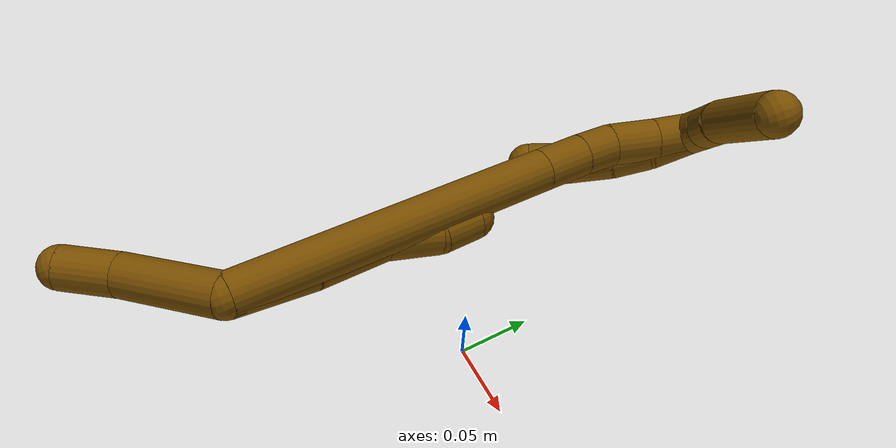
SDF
<sdf version="1.7">
 <world name="default">
  <model name="12">
   <static>0</static>
   <link name="12">
    <collision name="collision-cylinder-e_1_2_8">
     <pose>-0.003795 0.013917 0.019859 -0.611244 -0.155234 0.049066</pose>
     <geometry><cylinder><radius>0.0125</radius><length>0.049091</length></cylinder></geometry>
     <surface>
      <friction><ode><mu>1.16</mu><mu2>1.16</mu2><slip1>0</slip1><slip2>0</slip2></ode></friction>
      <contact><ode><kp>1e+06</kp><kd>1</kd><max_vel>0</max_vel><min_depth>0.001</min_depth></ode></contact>
     </surface>
    </collision>
    <visual name="visual-cylinder-e_1_2_8">
     <pose>-0.003795 0.013917 0.019859 -0.611244 -0.155234 0.049066</pose>
     <geometry><cylinder><radius>0.0125</radius><length>0.049091</length></cylinder></geometry>
     <material><ambient>0.466667 0.301961 0 1</ambient></material>
    </visual>
    <collision name="collision-cylinder-e_2_8_9">
     <pose>-0.012495 0.039393 0.05882 -0.54418 -0.216268 0.060559</pose>
     <geometry><cylinder><radius>0.0125</radius><length>0.045718</length></cylinder></geometry>
     <surface>
      <friction><ode><mu>1.16</mu><mu2>1.16</mu2><slip1>0</slip1><slip2>0</slip2></ode></friction>
      <contact><ode><kp>1e+06</kp><kd>1</kd><max_vel>0</max_vel><min_depth>0.001</min_depth></ode></contact>
     </surface>
    </collision>
    <visual name="visual-cylinder-e_2_8_9">
     <pose>-0.012495 0.039393 0.05882 -0.54418 -0.216268 0.060559</pose>
     <geometry><cylinder><radius>0.0125</radius><length>0.045718</length></cylinder></geometry>
     <material><ambient>0.466667 0.301961 0 1</ambient></material>
    </visual>
    <collision name="collision-cylinder-e_3_9_10">
     <pose>-0.015745 0.05738 0.092564 -0.413681 0.103177 -0.021669</pose>
     <geometry><cylinder><radius>0.0125</radius><length>0.032153</length></cylinder></geometry>
     <surface>
      <friction><ode><mu>1.16</mu><mu2>1.16</mu2><slip1>0</slip1><slip2>0</slip2></ode></friction>
      <contact><ode><kp>1e+06</kp><kd>1</kd><max_vel>0</max_vel><min_depth>0.001</min_depth></ode></contact>
     </surface>
    </collision>
    <visual name="visual-cylinder-e_3_9_10">
     <pose>-0.015745 0.05738 0.092564 -0.413681 0.103177 -0.021669</pose>
     <geometry><cylinder><radius>0.0125</radius><length>0.032153</length></cylinder></geometry>
     <material><ambient>0.466667 0.301961 0 1</ambient></material>
    </visual>
    <collision name="collision-cylinder-e_4_10_6">
     <pose>-0.016401 0.068879 0.117287 -0.466077 -0.202097 0.048123</pose>
     <geometry><cylinder><radius>0.0125</radius><length>0.023038</length></cylinder></geometry>
     <surface>
      <friction><ode><mu>1.16</mu><mu2>1.16</mu2><slip1>0</slip1><slip2>0</slip2></ode></friction>
      <contact><ode><kp>1e+06</kp><kd>1</kd><max_vel>0</max_vel><min_depth>0.001</min_depth></ode></contact>
     </surface>
    </collision>
    <visual name="visual-cylinder-e_4_10_6">
     <pose>-0.016401 0.068879 0.117287 -0.466077 -0.202097 0.048123</pose>
     <geometry><cylinder><radius>0.0125</radius><length>0.023038</length></cylinder></geometry>
     <material><ambient>0.466667 0.301961 0 1</ambient></material>
    </visual>
    <collision name="collision-cylinder-e_1_2_11">
     <pose>-0.017857 0.005711 -0.02731 -2.93543 -0.569329 2.46197</pose>
     <geometry><cylinder><radius>0.0125</radius><length>0.066253</length></cylinder></geometry>
     <surface>
      <friction><ode><mu>1.16</mu><mu2>1.16</mu2><slip1>0</slip1><slip2>0</slip2></ode></friction>
      <contact><ode><kp>1e+06</kp><kd>1</kd><max_vel>0</max_vel><min_depth>0.001</min_depth></ode></contact>
     </surface>
    </collision>
    <visual name="visual-cylinder-e_1_2_11">
     <pose>-0.017857 0.005711 -0.02731 -2.93543 -0.569329 2.46197</pose>
     <geometry><cylinder><radius>0.0125</radius><length>0.066253</length></cylinder></geometry>
     <material><ambient>0.466667 0.301961 0 1</ambient></material>
    </visual>
    <collision name="collision-cylinder-e_2_11_5">
     <pose>-0.043233 0.0097 -0.069628 3.02727 -0.461824 -2.66409</pose>
     <geometry><cylinder><radius>0.0125</radius><length>0.033747</length></cylinder></geometry>
     <surface>
      <friction><ode><mu>1.16</mu><mu2>1.16</mu2><slip1>0</slip1><slip2>0</slip2></ode></friction>
      <contact><ode><kp>1e+06</kp><kd>1</kd><max_vel>0</max_vel><min_depth>0.001</min_depth></ode></contact>
     </surface>
    </collision>
    <visual name="visual-cylinder-e_2_11_5">
     <pose>-0.043233 0.0097 -0.069628 3.02727 -0.461824 -2.66409</pose>
     <geometry><cylinder><radius>0.0125</radius><length>0.033747</length></cylinder></geometry>
     <material><ambient>0.466667 0.301961 0 1</ambient></material>
    </visual>
    <collision name="collision-cylinder-e_1_2_12">
     <pose>-0.018124 0.044127 0.087137 -0.468766 -0.183476 0.043925</pose>
     <geometry><cylinder><radius>0.0125</radius><length>0.198681</length></cylinder></geometry>
     <surface>
      <friction><ode><mu>1.16</mu><mu2>1.16</mu2><slip1>0</slip1><slip2>0</slip2></ode></friction>
      <contact><ode><kp>1e+06</kp><kd>1</kd><max_vel>0</max_vel><min_depth>0.001</min_depth></ode></contact>
     </surface>
    </collision>
    <visual name="visual-cylinder-e_1_2_12">
     <pose>-0.018124 0.044127 0.087137 -0.468766 -0.183476 0.043925</pose>
     <geometry><cylinder><radius>0.0125</radius><length>0.198681</length></cylinder></geometry>
     <material><ambient>0.466667 0.301961 0 1</ambient></material>
    </visual>
    <collision name="collision-cylinder-e_2_12_13">
     <pose>-0.03874 0.094396 0.186951 -0.45108 -0.175056 0.040263</pose>
     <geometry><cylinder><radius>0.0125</radius><length>0.028611</length></cylinder></geometry>
     <surface>
      <friction><ode><mu>1.16</mu><mu2>1.16</mu2><slip1>0</slip1><slip2>0</slip2></ode></friction>
      <contact><ode><kp>1e+06</kp><kd>1</kd><max_vel>0</max_vel><min_depth>0.001</min_depth></ode></contact>
     </surface>
    </collision>
    <visual name="visual-cylinder-e_2_12_13">
     <pose>-0.03874 0.094396 0.186951 -0.45108 -0.175056 0.040263</pose>
     <geometry><cylinder><radius>0.0125</radius><length>0.028611</length></cylinder></geometry>
     <material><ambient>0.466667 0.301961 0 1</ambient></material>
    </visual>
    <collision name="collision-cylinder-e_3_13_14">
     <pose>-0.042652 0.10508 0.209413 -0.434777 -0.130896 0.028952</pose>
     <geometry><cylinder><radius>0.0125</radius><length>0.021761</length></cylinder></geometry>
     <surface>
      <friction><ode><mu>1.16</mu><mu2>1.16</mu2><slip1>0</slip1><slip2>0</slip2></ode></friction>
      <contact><ode><kp>1e+06</kp><kd>1</kd><max_vel>0</max_vel><min_depth>0.001</min_depth></ode></contact>
     </surface>
    </collision>
    <visual name="visual-cylinder-e_3_13_14">
     <pose>-0.042652 0.10508 0.209413 -0.434777 -0.130896 0.028952</pose>
     <geometry><cylinder><radius>0.0125</radius><length>0.021761</length></cylinder></geometry>
     <material><ambient>0.466667 0.301961 0 1</ambient></material>
    </visual>
    <collision name="collision-cylinder-e_4_14_15">
     <pose>-0.042217 0.113666 0.232646 -0.291941 0.131358 -0.019339</pose>
     <geometry><cylinder><radius>0.0125</radius><length>0.028331</length></cylinder></geometry>
     <surface>
      <friction><ode><mu>1.16</mu><mu2>1.16</mu2><slip1>0</slip1><slip2>0</slip2></ode></friction>
      <contact><ode><kp>1e+06</kp><kd>1</kd><max_vel>0</max_vel><min_depth>0.001</min_depth></ode></contact>
     </surface>
    </collision>
    <visual name="visual-cylinder-e_4_14_15">
     <pose>-0.042217 0.113666 0.232646 -0.291941 0.131358 -0.019339</pose>
     <geometry><cylinder><radius>0.0125</radius><length>0.028331</length></cylinder></geometry>
     <material><ambient>0.466667 0.301961 0 1</ambient></material>
    </visual>
    <collision name="collision-cylinder-e_5_15_1">
     <pose>-0.038992 0.120272 0.257024 -0.230437 0.121403 -0.014067</pose>
     <geometry><cylinder><radius>0.0125</radius><length>0.022615</length></cylinder></geometry>
     <surface>
      <friction><ode><mu>1.16</mu><mu2>1.16</mu2><slip1>0</slip1><slip2>0</slip2></ode></friction>
      <contact><ode><kp>1e+06</kp><kd>1</kd><max_vel>0</max_vel><min_depth>0.001</min_depth></ode></contact>
     </surface>
    </collision>
    <visual name="visual-cylinder-e_5_15_1">
     <pose>-0.038992 0.120272 0.257024 -0.230437 0.121403 -0.014067</pose>
     <geometry><cylinder><radius>0.0125</radius><length>0.022615</length></cylinder></geometry>
     <material><ambient>0.466667 0.301961 0 1</ambient></material>
    </visual>
    <collision name="collision-cylinder-e_1_1_16">
     <pose>-0.03435 0.113883 0.271075 1.23506 0.33233 0.237097</pose>
     <geometry><cylinder><radius>0.0125</radius><length>0.020061</length></cylinder></geometry>
     <surface>
      <friction><ode><mu>1.16</mu><mu2>1.16</mu2><slip1>0</slip1><slip2>0</slip2></ode></friction>
      <contact><ode><kp>1e+06</kp><kd>1</kd><max_vel>0</max_vel><min_depth>0.001</min_depth></ode></contact>
     </surface>
    </collision>
    <visual name="visual-cylinder-e_1_1_16">
     <pose>-0.03435 0.113883 0.271075 1.23506 0.33233 0.237097</pose>
     <geometry><cylinder><radius>0.0125</radius><length>0.020061</length></cylinder></geometry>
     <material><ambient>0.466667 0.301961 0 1</ambient></material>
    </visual>
    <collision name="collision-cylinder-e_2_16_17">
     <pose>-0.027337 0.094336 0.275743 1.42608 0.33615 0.291401</pose>
     <geometry><cylinder><radius>0.0125</radius><length>0.022684</length></cylinder></geometry>
     <surface>
      <friction><ode><mu>1.16</mu><mu2>1.16</mu2><slip1>0</slip1><slip2>0</slip2></ode></friction>
      <contact><ode><kp>1e+06</kp><kd>1</kd><max_vel>0</max_vel><min_depth>0.001</min_depth></ode></contact>
     </surface>
    </collision>
    <visual name="visual-cylinder-e_2_16_17">
     <pose>-0.027337 0.094336 0.275743 1.42608 0.33615 0.291401</pose>
     <geometry><cylinder><radius>0.0125</radius><length>0.022684</length></cylinder></geometry>
     <material><ambient>0.466667 0.301961 0 1</ambient></material>
    </visual>
    <collision name="collision-cylinder-e_3_17_4">
     <pose>-0.011282 0.058733 0.283809 1.31569 0.444639 0.34584</pose>
     <geometry><cylinder><radius>0.0125</radius><length>0.057256</length></cylinder></geometry>
     <surface>
      <friction><ode><mu>1.16</mu><mu2>1.16</mu2><slip1>0</slip1><slip2>0</slip2></ode></friction>
      <contact><ode><kp>1e+06</kp><kd>1</kd><max_vel>0</max_vel><min_depth>0.001</min_depth></ode></contact>
     </surface>
    </collision>
    <visual name="visual-cylinder-e_3_17_4">
     <pose>-0.011282 0.058733 0.283809 1.31569 0.444639 0.34584</pose>
     <geometry><cylinder><radius>0.0125</radius><length>0.057256</length></cylinder></geometry>
     <material><ambient>0.466667 0.301961 0 1</ambient></material>
    </visual>
    <collision name="collision-cylinder-e_1_1_18">
     <pose>-0.037829 0.123622 0.254988 -3.081 -0.015887 0.512729</pose>
     <geometry><cylinder><radius>0.0125</radius><length>0.025978</length></cylinder></geometry>
     <surface>
      <friction><ode><mu>1.16</mu><mu2>1.16</mu2><slip1>0</slip1><slip2>0</slip2></ode></friction>
      <contact><ode><kp>1e+06</kp><kd>1</kd><max_vel>0</max_vel><min_depth>0.001</min_depth></ode></contact>
     </surface>
    </collision>
    <visual name="visual-cylinder-e_1_1_18">
     <pose>-0.037829 0.123622 0.254988 -3.081 -0.015887 0.512729</pose>
     <geometry><cylinder><radius>0.0125</radius><length>0.025978</length></cylinder></geometry>
     <material><ambient>0.466667 0.301961 0 1</ambient></material>
    </visual>
    <collision name="collision-cylinder-e_2_18_19">
     <pose>-0.040028 0.125784 0.230744 -3.02025 -0.173632 1.92292</pose>
     <geometry><cylinder><radius>0.0125</radius><length>0.023075</length></cylinder></geometry>
     <surface>
      <friction><ode><mu>1.16</mu><mu2>1.16</mu2><slip1>0</slip1><slip2>0</slip2></ode></friction>
      <contact><ode><kp>1e+06</kp><kd>1</kd><max_vel>0</max_vel><min_depth>0.001</min_depth></ode></contact>
     </surface>
    </collision>
    <visual name="visual-cylinder-e_2_18_19">
     <pose>-0.040028 0.125784 0.230744 -3.02025 -0.173632 1.92292</pose>
     <geometry><cylinder><radius>0.0125</radius><length>0.023075</length></cylinder></geometry>
     <material><ambient>0.466667 0.301961 0 1</ambient></material>
    </visual>
    <collision name="collision-cylinder-e_3_19_20">
     <pose>-0.045596 0.127061 0.206259 3.13415 -0.264319 -3.08563</pose>
     <geometry><cylinder><radius>0.0125</radius><length>0.027362</length></cylinder></geometry>
     <surface>
      <friction><ode><mu>1.16</mu><mu2>1.16</mu2><slip1>0</slip1><slip2>0</slip2></ode></friction>
      <contact><ode><kp>1e+06</kp><kd>1</kd><max_vel>0</max_vel><min_depth>0.001</min_depth></ode></contact>
     </surface>
    </collision>
    <visual name="visual-cylinder-e_3_19_20">
     <pose>-0.045596 0.127061 0.206259 3.13415 -0.264319 -3.08563</pose>
     <geometry><cylinder><radius>0.0125</radius><length>0.027362</length></cylinder></geometry>
     <material><ambient>0.466667 0.301961 0 1</ambient></material>
    </visual>
    <collision name="collision-cylinder-e_4_20_3">
     <pose>-0.053097 0.125605 0.182017 3.01919 -0.339469 -2.45482</pose>
     <geometry><cylinder><radius>0.0125</radius><length>0.023586</length></cylinder></geometry>
     <surface>
      <friction><ode><mu>1.16</mu><mu2>1.16</mu2><slip1>0</slip1><slip2>0</slip2></ode></friction>
      <contact><ode><kp>1e+06</kp><kd>1</kd><max_vel>0</max_vel><min_depth>0.001</min_depth></ode></contact>
     </surface>
    </collision>
    <visual name="visual-cylinder-e_4_20_3">
     <pose>-0.053097 0.125605 0.182017 3.01919 -0.339469 -2.45482</pose>
     <geometry><cylinder><radius>0.0125</radius><length>0.023586</length></cylinder></geometry>
     <material><ambient>0.466667 0.301961 0 1</ambient></material>
    </visual>
    <collision name="collision-sphere-3">
     <pose>-0.057024 0.124247 0.17098 0 -0 0</pose>
     <geometry><sphere><radius>0.0125</radius></sphere></geometry>
     <surface>
      <friction><ode><mu>1.16</mu><mu2>1.16</mu2><slip1>0</slip1><slip2>0</slip2></ode></friction>
      <contact><ode><kp>1e+06</kp><kd>1</kd><max_vel>0</max_vel><min_depth>0.001</min_depth></ode></contact>
     </surface>
    </collision>
    <visual name="visual-sphere-3">
     <pose>-0.057024 0.124247 0.17098 0 -0 0</pose>
     <geometry><sphere><radius>0.0125</radius></sphere></geometry>
     <material><ambient>0.466667 0.301961 0 1</ambient></material>
    </visual>
    <collision name="collision-sphere-20">
     <pose>-0.04917 0.126963 0.193053 0 -0 0</pose>
     <geometry><sphere><radius>0.0125</radius></sphere></geometry>
     <surface>
      <friction><ode><mu>1.16</mu><mu2>1.16</mu2><slip1>0</slip1><slip2>0</slip2></ode></friction>
      <contact><ode><kp>1e+06</kp><kd>1</kd><max_vel>0</max_vel><min_depth>0.001</min_depth></ode></contact>
     </surface>
    </collision>
    <visual name="visual-sphere-20">
     <pose>-0.04917 0.126963 0.193053 0 -0 0</pose>
     <geometry><sphere><radius>0.0125</radius></sphere></geometry>
     <material><ambient>0.466667 0.301961 0 1</ambient></material>
    </visual>
    <collision name="collision-sphere-19">
     <pose>-0.042022 0.127159 0.219464 0 -0 0</pose>
     <geometry><sphere><radius>0.0125</radius></sphere></geometry>
     <surface>
      <friction><ode><mu>1.16</mu><mu2>1.16</mu2><slip1>0</slip1><slip2>0</slip2></ode></friction>
      <contact><ode><kp>1e+06</kp><kd>1</kd><max_vel>0</max_vel><min_depth>0.001</min_depth></ode></contact>
     </surface>
    </collision>
    <visual name="visual-sphere-19">
     <pose>-0.042022 0.127159 0.219464 0 -0 0</pose>
     <geometry><sphere><radius>0.0125</radius></sphere></geometry>
     <material><ambient>0.466667 0.301961 0 1</ambient></material>
    </visual>
    <collision name="collision-sphere-11">
     <pose>-0.035715 0.011423 -0.054621 0 -0 0</pose>
     <geometry><sphere><radius>0.0125</radius></sphere></geometry>
     <surface>
      <friction><ode><mu>1.16</mu><mu2>1.16</mu2><slip1>0</slip1><slip2>0</slip2></ode></friction>
      <contact><ode><kp>1e+06</kp><kd>1</kd><max_vel>0</max_vel><min_depth>0.001</min_depth></ode></contact>
     </surface>
    </collision>
    <visual name="visual-sphere-11">
     <pose>-0.035715 0.011423 -0.054621 0 -0 0</pose>
     <geometry><sphere><radius>0.0125</radius></sphere></geometry>
     <material><ambient>0.466667 0.301961 0 1</ambient></material>
    </visual>
    <collision name="collision-sphere-6">
     <pose>-0.018713 0.07395 0.127368 0 -0 0</pose>
     <geometry><sphere><radius>0.0125</radius></sphere></geometry>
     <surface>
      <friction><ode><mu>1.16</mu><mu2>1.16</mu2><slip1>0</slip1><slip2>0</slip2></ode></friction>
      <contact><ode><kp>1e+06</kp><kd>1</kd><max_vel>0</max_vel><min_depth>0.001</min_depth></ode></contact>
     </surface>
    </collision>
    <visual name="visual-sphere-6">
     <pose>-0.018713 0.07395 0.127368 0 -0 0</pose>
     <geometry><sphere><radius>0.0125</radius></sphere></geometry>
     <material><ambient>0.466667 0.301961 0 1</ambient></material>
    </visual>
    <collision name="collision-sphere-10">
     <pose>-0.014089 0.063808 0.107206 0 -0 0</pose>
     <geometry><sphere><radius>0.0125</radius></sphere></geometry>
     <surface>
      <friction><ode><mu>1.16</mu><mu2>1.16</mu2><slip1>0</slip1><slip2>0</slip2></ode></friction>
      <contact><ode><kp>1e+06</kp><kd>1</kd><max_vel>0</max_vel><min_depth>0.001</min_depth></ode></contact>
     </surface>
    </collision>
    <visual name="visual-sphere-10">
     <pose>-0.014089 0.063808 0.107206 0 -0 0</pose>
     <geometry><sphere><radius>0.0125</radius></sphere></geometry>
     <material><ambient>0.466667 0.301961 0 1</ambient></material>
    </visual>
    <collision name="collision-sphere-9">
     <pose>-0.0174 0.050951 0.077922 0 -0 0</pose>
     <geometry><sphere><radius>0.0125</radius></sphere></geometry>
     <surface>
      <friction><ode><mu>1.16</mu><mu2>1.16</mu2><slip1>0</slip1><slip2>0</slip2></ode></friction>
      <contact><ode><kp>1e+06</kp><kd>1</kd><max_vel>0</max_vel><min_depth>0.001</min_depth></ode></contact>
     </surface>
    </collision>
    <visual name="visual-sphere-9">
     <pose>-0.0174 0.050951 0.077922 0 -0 0</pose>
     <geometry><sphere><radius>0.0125</radius></sphere></geometry>
     <material><ambient>0.466667 0.301961 0 1</ambient></material>
    </visual>
    <collision name="collision-sphere-2">
     <geometry><sphere><radius>0.0125</radius></sphere></geometry>
     <surface>
      <friction><ode><mu>1.16</mu><mu2>1.16</mu2><slip1>0</slip1><slip2>0</slip2></ode></friction>
      <contact><ode><kp>1e+06</kp><kd>1</kd><max_vel>0</max_vel><min_depth>0.001</min_depth></ode></contact>
     </surface>
    </collision>
    <visual name="visual-sphere-2">
     <geometry><sphere><radius>0.0125</radius></sphere></geometry>
     <material><ambient>0.466667 0.301961 0 1</ambient></material>
    </visual>
    <collision name="collision-sphere-8">
     <pose>-0.00759 0.027834 0.039719 0 -0 0</pose>
     <geometry><sphere><radius>0.0125</radius></sphere></geometry>
     <surface>
      <friction><ode><mu>1.16</mu><mu2>1.16</mu2><slip1>0</slip1><slip2>0</slip2></ode></friction>
      <contact><ode><kp>1e+06</kp><kd>1</kd><max_vel>0</max_vel><min_depth>0.001</min_depth></ode></contact>
     </surface>
    </collision>
    <visual name="visual-sphere-8">
     <pose>-0.00759 0.027834 0.039719 0 -0 0</pose>
     <geometry><sphere><radius>0.0125</radius></sphere></geometry>
     <material><ambient>0.466667 0.301961 0 1</ambient></material>
    </visual>
    <collision name="collision-sphere-5">
     <pose>-0.050752 0.007976 -0.084635 0 -0 0</pose>
     <geometry><sphere><radius>0.0125</radius></sphere></geometry>
     <surface>
      <friction><ode><mu>1.16</mu><mu2>1.16</mu2><slip1>0</slip1><slip2>0</slip2></ode></friction>
      <contact><ode><kp>1e+06</kp><kd>1</kd><max_vel>0</max_vel><min_depth>0.001</min_depth></ode></contact>
     </surface>
    </collision>
    <visual name="visual-sphere-5">
     <pose>-0.050752 0.007976 -0.084635 0 -0 0</pose>
     <geometry><sphere><radius>0.0125</radius></sphere></geometry>
     <material><ambient>0.466667 0.301961 0 1</ambient></material>
    </visual>
    <collision name="collision-sphere-12">
     <pose>-0.036249 0.088254 0.174273 0 -0 0</pose>
     <geometry><sphere><radius>0.0125</radius></sphere></geometry>
     <surface>
      <friction><ode><mu>1.16</mu><mu2>1.16</mu2><slip1>0</slip1><slip2>0</slip2></ode></friction>
      <contact><ode><kp>1e+06</kp><kd>1</kd><max_vel>0</max_vel><min_depth>0.001</min_depth></ode></contact>
     </surface>
    </collision>
    <visual name="visual-sphere-12">
     <pose>-0.036249 0.088254 0.174273 0 -0 0</pose>
     <geometry><sphere><radius>0.0125</radius></sphere></geometry>
     <material><ambient>0.466667 0.301961 0 1</ambient></material>
    </visual>
    <collision name="collision-sphere-13">
     <pose>-0.041232 0.100537 0.199629 0 -0 0</pose>
     <geometry><sphere><radius>0.0125</radius></sphere></geometry>
     <surface>
      <friction><ode><mu>1.16</mu><mu2>1.16</mu2><slip1>0</slip1><slip2>0</slip2></ode></friction>
      <contact><ode><kp>1e+06</kp><kd>1</kd><max_vel>0</max_vel><min_depth>0.001</min_depth></ode></contact>
     </surface>
    </collision>
    <visual name="visual-sphere-13">
     <pose>-0.041232 0.100537 0.199629 0 -0 0</pose>
     <geometry><sphere><radius>0.0125</radius></sphere></geometry>
     <material><ambient>0.466667 0.301961 0 1</ambient></material>
    </visual>
    <collision name="collision-sphere-14">
     <pose>-0.044072 0.109624 0.219197 0 -0 0</pose>
     <geometry><sphere><radius>0.0125</radius></sphere></geometry>
     <surface>
      <friction><ode><mu>1.16</mu><mu2>1.16</mu2><slip1>0</slip1><slip2>0</slip2></ode></friction>
      <contact><ode><kp>1e+06</kp><kd>1</kd><max_vel>0</max_vel><min_depth>0.001</min_depth></ode></contact>
     </surface>
    </collision>
    <visual name="visual-sphere-14">
     <pose>-0.044072 0.109624 0.219197 0 -0 0</pose>
     <geometry><sphere><radius>0.0125</radius></sphere></geometry>
     <material><ambient>0.466667 0.301961 0 1</ambient></material>
    </visual>
    <collision name="collision-sphere-15">
     <pose>-0.040361 0.117708 0.246096 0 -0 0</pose>
     <geometry><sphere><radius>0.0125</radius></sphere></geometry>
     <surface>
      <friction><ode><mu>1.16</mu><mu2>1.16</mu2><slip1>0</slip1><slip2>0</slip2></ode></friction>
      <contact><ode><kp>1e+06</kp><kd>1</kd><max_vel>0</max_vel><min_depth>0.001</min_depth></ode></contact>
     </surface>
    </collision>
    <visual name="visual-sphere-15">
     <pose>-0.040361 0.117708 0.246096 0 -0 0</pose>
     <geometry><sphere><radius>0.0125</radius></sphere></geometry>
     <material><ambient>0.466667 0.301961 0 1</ambient></material>
    </visual>
    <collision name="collision-sphere-1">
     <pose>-0.037623 0.122835 0.267951 0 -0 0</pose>
     <geometry><sphere><radius>0.0125</radius></sphere></geometry>
     <surface>
      <friction><ode><mu>1.16</mu><mu2>1.16</mu2><slip1>0</slip1><slip2>0</slip2></ode></friction>
      <contact><ode><kp>1e+06</kp><kd>1</kd><max_vel>0</max_vel><min_depth>0.001</min_depth></ode></contact>
     </surface>
    </collision>
    <visual name="visual-sphere-1">
     <pose>-0.037623 0.122835 0.267951 0 -0 0</pose>
     <geometry><sphere><radius>0.0125</radius></sphere></geometry>
     <material><ambient>0.466667 0.301961 0 1</ambient></material>
    </visual>
    <collision name="collision-sphere-18">
     <pose>-0.038035 0.124408 0.242025 0 -0 0</pose>
     <geometry><sphere><radius>0.0125</radius></sphere></geometry>
     <surface>
      <friction><ode><mu>1.16</mu><mu2>1.16</mu2><slip1>0</slip1><slip2>0</slip2></ode></friction>
      <contact><ode><kp>1e+06</kp><kd>1</kd><max_vel>0</max_vel><min_depth>0.001</min_depth></ode></contact>
     </surface>
    </collision>
    <visual name="visual-sphere-18">
     <pose>-0.038035 0.124408 0.242025 0 -0 0</pose>
     <geometry><sphere><radius>0.0125</radius></sphere></geometry>
     <material><ambient>0.466667 0.301961 0 1</ambient></material>
    </visual>
    <collision name="collision-sphere-16">
     <pose>-0.031078 0.104931 0.274199 0 -0 0</pose>
     <geometry><sphere><radius>0.0125</radius></sphere></geometry>
     <surface>
      <friction><ode><mu>1.16</mu><mu2>1.16</mu2><slip1>0</slip1><slip2>0</slip2></ode></friction>
      <contact><ode><kp>1e+06</kp><kd>1</kd><max_vel>0</max_vel><min_depth>0.001</min_depth></ode></contact>
     </surface>
    </collision>
    <visual name="visual-sphere-16">
     <pose>-0.031078 0.104931 0.274199 0 -0 0</pose>
     <geometry><sphere><radius>0.0125</radius></sphere></geometry>
     <material><ambient>0.466667 0.301961 0 1</ambient></material>
    </visual>
    <collision name="collision-sphere-17">
     <pose>-0.023595 0.083741 0.277287 0 -0 0</pose>
     <geometry><sphere><radius>0.0125</radius></sphere></geometry>
     <surface>
      <friction><ode><mu>1.16</mu><mu2>1.16</mu2><slip1>0</slip1><slip2>0</slip2></ode></friction>
      <contact><ode><kp>1e+06</kp><kd>1</kd><max_vel>0</max_vel><min_depth>0.001</min_depth></ode></contact>
     </surface>
    </collision>
    <visual name="visual-sphere-17">
     <pose>-0.023595 0.083741 0.277287 0 -0 0</pose>
     <geometry><sphere><radius>0.0125</radius></sphere></geometry>
     <material><ambient>0.466667 0.301961 0 1</ambient></material>
    </visual>
    <collision name="collision-sphere-4">
     <pose>0.001032 0.033725 0.290331 0 -0 0</pose>
     <geometry><sphere><radius>0.0125</radius></sphere></geometry>
     <surface>
      <friction><ode><mu>1.16</mu><mu2>1.16</mu2><slip1>0</slip1><slip2>0</slip2></ode></friction>
      <contact><ode><kp>1e+06</kp><kd>1</kd><max_vel>0</max_vel><min_depth>0.001</min_depth></ode></contact>
     </surface>
    </collision>
    <visual name="visual-sphere-4">
     <pose>0.001032 0.033725 0.290331 0 -0 0</pose>
     <geometry><sphere><radius>0.0125</radius></sphere></geometry>
     <material><ambient>0.466667 0.301961 0 1</ambient></material>
    </visual>
    <inertial>
     <pose>-0.024481 0.062209 0.126177 0 -0 0</pose>
     <mass>0.75</mass>
     <inertia>
      <ixx>0.000724</ixx>
      <ixy>0</ixy>
      <ixz>0</ixz>
      <iyy>0.000721</iyy>
      <iyz>0</iyz>
      <izz>-0.000144</izz>
     </inertia>
    </inertial>
   </link>
   <pose>-0.007332 -0.14007 0.178976 -1.30628 0.214395 -0.17009</pose>
  </model>
 </world>
</sdf>
